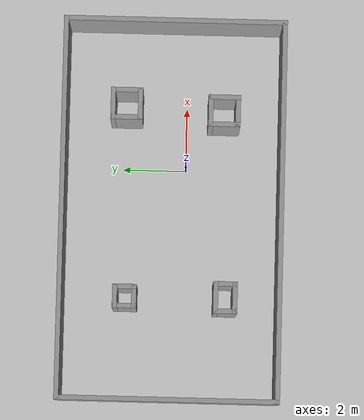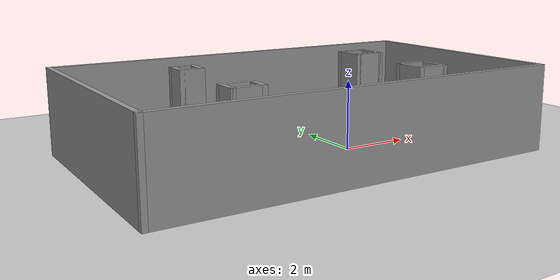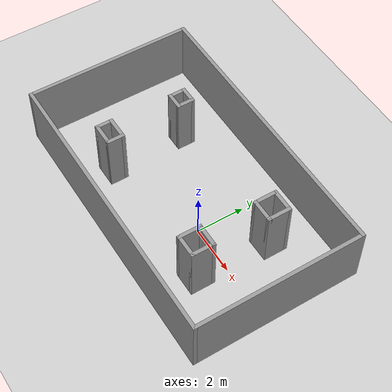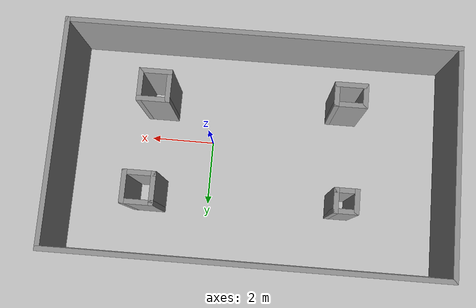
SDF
<sdf version="1.7">
 <world name="default">
  <light name="sun" type="directional">
   <pose>0 0 10 0 -0 0</pose>
   <diffuse>0.8 0.8 0.8 1</diffuse>
   <specular>0.2 0.2 0.2 1</specular>
   <attenuation>
    <range>1000</range>
    <constant>0.9</constant>
    <linear>0.01</linear>
    <quadratic>0.001</quadratic>
   </attenuation>
   <direction>-0.5 0.1 -0.9</direction>
   <spot><inner_angle>0</inner_angle><outer_angle>0</outer_angle><falloff>0</falloff></spot>
  </light>
  <model name="ground_plane">
   <static>1</static>
   <link name="link">
    <collision name="collision">
     <geometry><plane><normal>0 0 1</normal><size>100 100</size></plane></geometry>
     <surface>
      <contact><collide_bitmask>65535</collide_bitmask></contact>
      <friction><ode><mu>100</mu><mu2>50</mu2></ode></friction>
     </surface>
    </collision>
    <visual name="visual">
     <cast_shadows>0</cast_shadows>
     <geometry><plane><normal>0 0 1</normal><size>100 100</size></plane></geometry>
     <material>
      <script><uri>file://media/materials/scripts/gazebo.material</uri><name>Gazebo/Grey</name></script>
     </material>
    </visual>
   </link>
  </model>
  <gravity>0 0 -9.8</gravity>
  <magnetic_field>6e-06 2.3e-05 -4.2e-05</magnetic_field>
  <atmosphere type="adiabatic"/>
  <physics type="ode">
   <max_step_size>0.001</max_step_size>
   <real_time_factor>1</real_time_factor>
   <real_time_update_rate>1000</real_time_update_rate>
  </physics>
  <scene><ambient>0.4 0.4 0.4 1</ambient><background>0.7 0.7 0.7 1</background><shadows>1</shadows></scene>
  <audio><device>default</device></audio>
  <spherical_coordinates>
   <surface_model>EARTH_WGS84</surface_model>
   <latitude_deg>0</latitude_deg>
   <longitude_deg>0</longitude_deg>
   <elevation>0</elevation>
   <heading_deg>0</heading_deg>
  </spherical_coordinates>
  <model name="Prueba">
   <pose>-1.41373 0.42682 0 0 -0 0</pose>
   <link name="Wall_10">
    <collision name="Wall_10_Collision">
     <geometry><box><size>0.75 0.15 2.5</size></box></geometry>
     <pose>0 0 1.25 0 -0 0</pose>
    </collision>
    <visual name="Wall_10_Visual">
     <pose>0 0 1.25 0 -0 0</pose>
     <geometry><box><size>0.75 0.15 2.5</size></box></geometry>
     <material>
      <script><uri>file://media/materials/scripts/gazebo.material</uri><name>Gazebo/Grey</name></script>
      <ambient>1 1 1 1</ambient>
     </material>
     <meta><layer>0</layer></meta>
    </visual>
    <pose>-2.44876 1.39523 0 0 -0 1.5708</pose>
   </link>
   <link name="Wall_11">
    <collision name="Wall_11_Collision">
     <geometry><box><size>0.75 0.15 2.5</size></box></geometry>
     <pose>0 0 1.25 0 -0 0</pose>
    </collision>
    <visual name="Wall_11_Visual">
     <pose>0 0 1.25 0 -0 0</pose>
     <geometry><box><size>0.75 0.15 2.5</size></box></geometry>
     <material>
      <script><uri>file://media/materials/scripts/gazebo.material</uri><name>Gazebo/Grey</name></script>
      <ambient>1 1 1 1</ambient>
     </material>
     <meta><layer>0</layer></meta>
    </visual>
    <pose>-2.74876 1.69523 0 0 -0 3.14159</pose>
   </link>
   <link name="Wall_24">
    <collision name="Wall_24_Collision">
     <geometry><box><size>0.75 0.15 2.5</size></box></geometry>
     <pose>0 0 1.25 0 -0 0</pose>
    </collision>
    <visual name="Wall_24_Visual">
     <pose>0 0 1.25 0 -0 0</pose>
     <geometry><box><size>0.75 0.15 2.5</size></box></geometry>
     <material>
      <script><uri>file://media/materials/scripts/gazebo.material</uri><name>Gazebo/Grey</name></script>
      <ambient>1 1 1 1</ambient>
     </material>
     <meta><layer>0</layer></meta>
    </visual>
    <pose>-3.14933 -1.74248 0 0 -0 -1.5708</pose>
   </link>
   <link name="Wall_25">
    <collision name="Wall_25_Collision">
     <geometry><box><size>1 0.15 2.5</size></box></geometry>
     <pose>0 0 1.25 0 -0 0</pose>
    </collision>
    <visual name="Wall_25_Visual">
     <pose>0 0 1.25 0 -0 0</pose>
     <geometry><box><size>1 0.15 2.5</size></box></geometry>
     <material>
      <script><uri>file://media/materials/scripts/gazebo.material</uri><name>Gazebo/Grey</name></script>
      <ambient>1 1 1 1</ambient>
     </material>
     <meta><layer>0</layer></meta>
    </visual>
    <pose>-2.72433 -2.04248 0 0 -0 0</pose>
   </link>
   <link name="Wall_26">
    <collision name="Wall_26_Collision">
     <geometry><box><size>0.75 0.15 2.5</size></box></geometry>
     <pose>0 0 1.25 0 -0 0</pose>
    </collision>
    <visual name="Wall_26_Visual">
     <pose>0 0 1.25 0 -0 0</pose>
     <geometry><box><size>0.75 0.15 2.5</size></box></geometry>
     <material>
      <script><uri>file://media/materials/scripts/gazebo.material</uri><name>Gazebo/Grey</name></script>
      <ambient>1 1 1 1</ambient>
     </material>
     <meta><layer>0</layer></meta>
    </visual>
    <pose>-2.29933 -1.74248 0 0 -0 1.5708</pose>
   </link>
   <link name="Wall_27">
    <collision name="Wall_27_Collision">
     <geometry><box><size>1 0.15 2.5</size></box></geometry>
     <pose>0 0 1.25 0 -0 0</pose>
    </collision>
    <visual name="Wall_27_Visual">
     <pose>0 0 1.25 0 -0 0</pose>
     <geometry><box><size>1 0.15 2.5</size></box></geometry>
     <material>
      <script><uri>file://media/materials/scripts/gazebo.material</uri><name>Gazebo/Grey</name></script>
      <ambient>1 1 1 1</ambient>
     </material>
     <meta><layer>0</layer></meta>
    </visual>
    <pose>-2.72433 -1.44248 0 0 -0 3.14159</pose>
   </link>
   <link name="Wall_29">
    <collision name="Wall_29_Collision">
     <geometry><box><size>1 0.15 2.5</size></box></geometry>
     <pose>0 0 1.25 0 -0 0</pose>
    </collision>
    <visual name="Wall_29_Visual">
     <pose>0 0 1.25 0 -0 0</pose>
     <geometry><box><size>1 0.15 2.5</size></box></geometry>
     <material>
      <script><uri>file://media/materials/scripts/gazebo.material</uri><name>Gazebo/Grey</name></script>
      <ambient>1 1 1 1</ambient>
     </material>
     <meta><layer>0</layer></meta>
    </visual>
    <pose>2.84452 1.47137 0 0 -0 -1.5708</pose>
   </link>
   <link name="Wall_3">
    <collision name="Wall_3_Collision">
     <geometry><box><size>12 0.15 2.5</size></box></geometry>
     <pose>0 0 1.25 0 -0 0</pose>
    </collision>
    <visual name="Wall_3_Visual">
     <pose>0 0 1.25 0 -0 0</pose>
     <geometry><box><size>12 0.15 2.5</size></box></geometry>
     <material>
      <script><uri>file://media/materials/scripts/gazebo.material</uri><name>Gazebo/Grey</name></script>
      <ambient>1 1 1 1</ambient>
     </material>
     <meta><layer>0</layer></meta>
    </visual>
    <pose>-0 3.425 0 0 -0 0</pose>
   </link>
   <link name="Wall_30">
    <collision name="Wall_30_Collision">
     <geometry><box><size>1 0.15 2.5</size></box></geometry>
     <pose>0 0 1.25 0 -0 0</pose>
    </collision>
    <visual name="Wall_30_Visual">
     <pose>0 0 1.25 0 -0 0</pose>
     <geometry><box><size>1 0.15 2.5</size></box></geometry>
     <material>
      <script><uri>file://media/materials/scripts/gazebo.material</uri><name>Gazebo/Grey</name></script>
      <ambient>1 1 1 1</ambient>
     </material>
     <meta><layer>0</layer></meta>
    </visual>
    <pose>3.26952 1.04637 0 0 -0 0</pose>
   </link>
   <link name="Wall_31">
    <collision name="Wall_31_Collision">
     <geometry><box><size>1 0.15 2.5</size></box></geometry>
     <pose>0 0 1.25 0 -0 0</pose>
    </collision>
    <visual name="Wall_31_Visual">
     <pose>0 0 1.25 0 -0 0</pose>
     <geometry><box><size>1 0.15 2.5</size></box></geometry>
     <material>
      <script><uri>file://media/materials/scripts/gazebo.material</uri><name>Gazebo/Grey</name></script>
      <ambient>1 1 1 1</ambient>
     </material>
     <meta><layer>0</layer></meta>
    </visual>
    <pose>3.69452 1.47137 0 0 -0 1.5708</pose>
   </link>
   <link name="Wall_32">
    <collision name="Wall_32_Collision">
     <geometry><box><size>1 0.15 2.5</size></box></geometry>
     <pose>0 0 1.25 0 -0 0</pose>
    </collision>
    <visual name="Wall_32_Visual">
     <pose>0 0 1.25 0 -0 0</pose>
     <geometry><box><size>1 0.15 2.5</size></box></geometry>
     <material>
      <script><uri>file://media/materials/scripts/gazebo.material</uri><name>Gazebo/Grey</name></script>
      <ambient>1 1 1 1</ambient>
     </material>
     <meta><layer>0</layer></meta>
    </visual>
    <pose>3.26952 1.89637 0 0 -0 3.14159</pose>
   </link>
   <link name="Wall_34">
    <collision name="Wall_34_Collision">
     <geometry><box><size>1 0.15 2.5</size></box></geometry>
     <pose>0 0 1.25 0 -0 0</pose>
    </collision>
    <visual name="Wall_34_Visual">
     <pose>0 0 1.25 0 -0 0</pose>
     <geometry><box><size>1 0.15 2.5</size></box></geometry>
     <material>
      <script><uri>file://media/materials/scripts/gazebo.material</uri><name>Gazebo/Grey</name></script>
      <ambient>1 1 1 1</ambient>
     </material>
     <meta><layer>0</layer></meta>
    </visual>
    <pose>2.68361 -1.58589 0 0 -0 -1.5708</pose>
   </link>
   <link name="Wall_35">
    <collision name="Wall_35_Collision">
     <geometry><box><size>1 0.15 2.5</size></box></geometry>
     <pose>0 0 1.25 0 -0 0</pose>
    </collision>
    <visual name="Wall_35_Visual">
     <pose>0 0 1.25 0 -0 0</pose>
     <geometry><box><size>1 0.15 2.5</size></box></geometry>
     <material>
      <script><uri>file://media/materials/scripts/gazebo.material</uri><name>Gazebo/Grey</name></script>
      <ambient>1 1 1 1</ambient>
     </material>
     <meta><layer>0</layer></meta>
    </visual>
    <pose>3.10861 -2.01089 0 0 -0 0</pose>
   </link>
   <link name="Wall_36">
    <collision name="Wall_36_Collision">
     <geometry><box><size>1 0.15 2.5</size></box></geometry>
     <pose>0 0 1.25 0 -0 0</pose>
    </collision>
    <visual name="Wall_36_Visual">
     <pose>0 0 1.25 0 -0 0</pose>
     <geometry><box><size>1 0.15 2.5</size></box></geometry>
     <material>
      <script><uri>file://media/materials/scripts/gazebo.material</uri><name>Gazebo/Grey</name></script>
      <ambient>1 1 1 1</ambient>
     </material>
     <meta><layer>0</layer></meta>
    </visual>
    <pose>3.53361 -1.58589 0 0 -0 1.5708</pose>
   </link>
   <link name="Wall_37">
    <collision name="Wall_37_Collision">
     <geometry><box><size>1 0.15 2.5</size></box></geometry>
     <pose>0 0 1.25 0 -0 0</pose>
    </collision>
    <visual name="Wall_37_Visual">
     <pose>0 0 1.25 0 -0 0</pose>
     <geometry><box><size>1 0.15 2.5</size></box></geometry>
     <material>
      <script><uri>file://media/materials/scripts/gazebo.material</uri><name>Gazebo/Grey</name></script>
      <ambient>1 1 1 1</ambient>
     </material>
     <meta><layer>0</layer></meta>
    </visual>
    <pose>3.10861 -1.16089 0 0 -0 3.14159</pose>
   </link>
   <link name="Wall_4">
    <collision name="Wall_4_Collision">
     <geometry><box><size>7 0.15 2.5</size></box></geometry>
     <pose>0 0 1.25 0 -0 0</pose>
    </collision>
    <visual name="Wall_4_Visual">
     <pose>0 0 1.25 0 -0 0</pose>
     <geometry><box><size>7 0.15 2.5</size></box></geometry>
     <material>
      <script><uri>file://media/materials/scripts/gazebo.material</uri><name>Gazebo/Grey</name></script>
      <ambient>1 1 1 1</ambient>
     </material>
     <meta><layer>0</layer></meta>
    </visual>
    <pose>5.925 0 0 0 -0 -1.5708</pose>
   </link>
   <link name="Wall_5">
    <collision name="Wall_5_Collision">
     <geometry><box><size>12 0.15 2.5</size></box></geometry>
     <pose>0 0 1.25 0 -0 0</pose>
    </collision>
    <visual name="Wall_5_Visual">
     <pose>0 0 1.25 0 -0 0</pose>
     <geometry><box><size>12 0.15 2.5</size></box></geometry>
     <material>
      <script><uri>file://media/materials/scripts/gazebo.material</uri><name>Gazebo/Grey</name></script>
      <ambient>1 1 1 1</ambient>
     </material>
     <meta><layer>0</layer></meta>
    </visual>
    <pose>-0 -3.425 0 0 -0 3.14159</pose>
   </link>
   <link name="Wall_6">
    <collision name="Wall_6_Collision">
     <geometry><box><size>7 0.15 2.5</size></box></geometry>
     <pose>0 0 1.25 0 -0 0</pose>
    </collision>
    <visual name="Wall_6_Visual">
     <pose>0 0 1.25 0 -0 0</pose>
     <geometry><box><size>7 0.15 2.5</size></box></geometry>
     <material>
      <script><uri>file://media/materials/scripts/gazebo.material</uri><name>Gazebo/Grey</name></script>
      <ambient>1 1 1 1</ambient>
     </material>
     <meta><layer>0</layer></meta>
    </visual>
    <pose>-5.925 0 0 0 -0 1.5708</pose>
   </link>
   <link name="Wall_8">
    <collision name="Wall_8_Collision">
     <geometry><box><size>0.75 0.15 2.5</size></box></geometry>
     <pose>0 0 1.25 0 -0 0</pose>
    </collision>
    <visual name="Wall_8_Visual">
     <pose>0 0 1.25 0 -0 0</pose>
     <geometry><box><size>0.75 0.15 2.5</size></box></geometry>
     <material>
      <script><uri>file://media/materials/scripts/gazebo.material</uri><name>Gazebo/Grey</name></script>
      <ambient>1 1 1 1</ambient>
     </material>
     <meta><layer>0</layer></meta>
    </visual>
    <pose>-3.04876 1.39523 0 0 -0 -1.5708</pose>
   </link>
   <link name="Wall_9">
    <collision name="Wall_9_Collision">
     <geometry><box><size>0.75 0.15 2.5</size></box></geometry>
     <pose>0 0 1.25 0 -0 0</pose>
    </collision>
    <visual name="Wall_9_Visual">
     <pose>0 0 1.25 0 -0 0</pose>
     <geometry><box><size>0.75 0.15 2.5</size></box></geometry>
     <material>
      <script><uri>file://media/materials/scripts/gazebo.material</uri><name>Gazebo/Grey</name></script>
      <ambient>1 1 1 1</ambient>
     </material>
     <meta><layer>0</layer></meta>
    </visual>
    <pose>-2.74876 1.09523 0 0 -0 0</pose>
   </link>
   <static>1</static>
  </model>
 </world>
</sdf>
